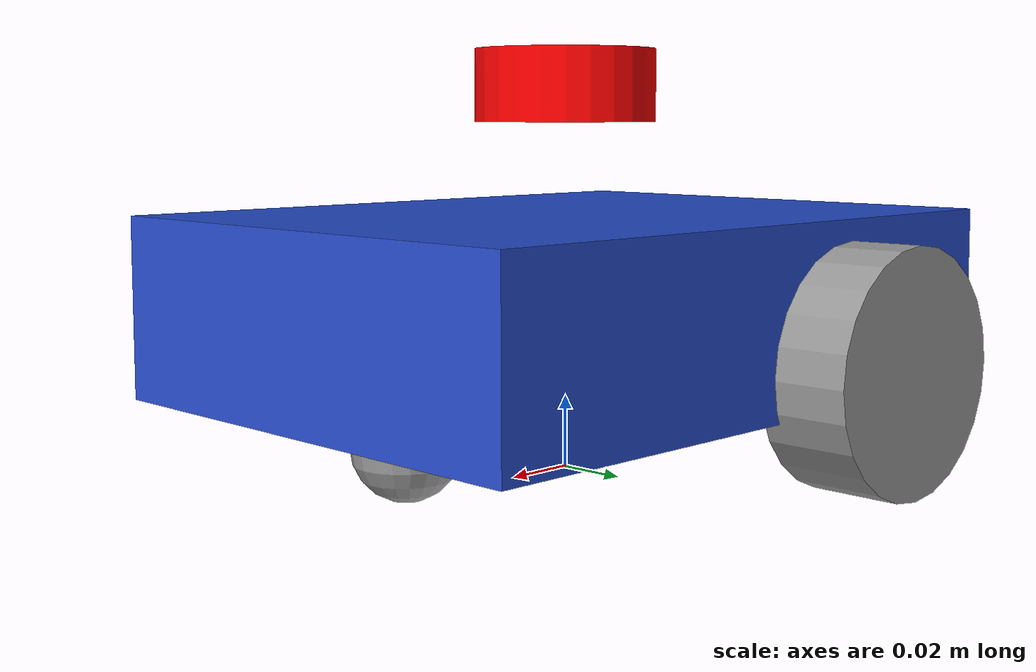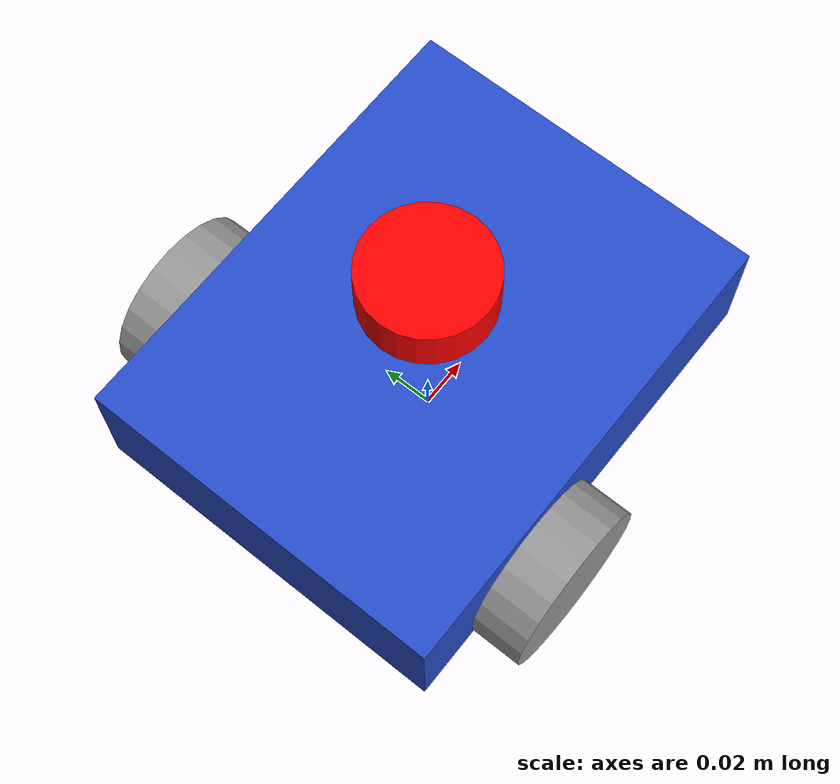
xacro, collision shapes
<?xml version="1.0"?>
<robot xmlns:xacro="http://www.ros.org/wiki/xacro">

  <!-- Parámetros generales -->
  <xacro:arg name="package_name" default="my_robot_description"/>
  <xacro:arg name="mesh_dir" default="meshes"/>

  <!-- Escala global del modelo CAD exportado desde SolidWorks -->
  <xacro:property name="global_scale" value="1.0"/>

  <!-- Base -->
  <xacro:property name="base_mesh" value="base_link.STL"/>
  <xacro:property name="base_scale" value="${global_scale} ${global_scale} ${global_scale}"/>
  <xacro:property name="base_visual_xyz" value="0 0 0"/>
  <xacro:property name="base_visual_rpy" value="0 0 0"/>

  <!-- Rueda izquierda -->
  <xacro:property name="left_wheel_mesh" value="Rueda_izquierda_link.STL"/>
  <xacro:property name="left_wheel_scale" value="${global_scale} ${global_scale} ${global_scale}"/>
  <xacro:property name="left_wheel_xyz" value="-0.033259 0.08025 -0.01375"/>
  <xacro:property name="left_wheel_rpy" value="0 0 0"/>
  <xacro:property name="left_wheel_axis" value="0 1 0"/>
  <xacro:property name="left_wheel_visual_xyz" value="0 0 0"/>
  <xacro:property name="left_wheel_visual_rpy" value="-1.5708 0.042481 0"/>

  <!-- Rueda derecha -->
  <xacro:property name="right_wheel_mesh" value="Rueda_derecha_link.STL"/>
  <xacro:property name="right_wheel_scale" value="${global_scale} ${global_scale} ${global_scale}"/>
  <xacro:property name="right_wheel_xyz" value="-0.033259 -0.08025 -0.01375"/>
  <xacro:property name="right_wheel_rpy" value="0 0 0"/>
  <xacro:property name="right_wheel_axis" value="0 1 0"/>
  <xacro:property name="right_wheel_visual_xyz" value="0 0 0"/>
  <xacro:property name="right_wheel_visual_rpy" value="-1.5708 0.042481 0"/>

  <!-- Soporte castor-->
  <xacro:property name="castor_base_mesh" value="Base_castor_link.STL"/>
  <xacro:property name="castor_base_scale" value="${global_scale} ${global_scale} ${global_scale}"/>
  <xacro:property name="castor_base_xyz" value="0.072581 0 -0.009"/>
  <xacro:property name="castor_base_rpy" value="0 0 0"/>
  <xacro:property name="castor_base_axis" value="0 0 1"/>
  <xacro:property name="castor_base_visual_rpy"  value="3.14159 0 3.14159"/>

  <!-- Rueda castor -->
  <xacro:property name="castor_wheel_mesh" value="Rueda_castor_link.STL"/>
  <xacro:property name="castor_wheel_scale" value="${global_scale} ${global_scale} ${global_scale}"/>
  <xacro:property name="castor_wheel_xyz" value="-0.015014 -0.00012272 -0.02296"/>
  <xacro:property name="castor_wheel_rpy" value="0 0 0"/>
  <xacro:property name="castor_wheel_axis" value="0 1 0"/>
  <xacro:property name="castor_wheel_visual_rpy" value="1.5708 0 0"/>

  <!-- Parámetros geométricos de referencia para usar en control/TF -->
  <!-- No se usan explicitamente, pero sirven para dejar documentadas las dimensiones principales -->
  <xacro:property name="wheel_separation" value="0.1605"/>
  <xacro:property name="wheel_radius" value="0.033"/>
  <xacro:property name="robot_length" value="0.185"/>
  <xacro:property name="robot_width" value="0.145"/>
  <xacro:property name="robot_height" value="0.050"/>

  <!-- Macro generica para cualquier link con malla STL.              -->
  <!-- Todos los valores que cambian entre links son parametros:      -->
  <!-- name, mesh, scale, visual_xyz, visual_rpy, material.          -->
  <xacro:macro name="mesh_link" params="name mesh scale visual_xyz visual_rpy material">
    <link name="${name}">
      <visual>
        <origin xyz="${visual_xyz}" rpy="${visual_rpy}"/>
        <geometry>
          <mesh filename="package://$(arg package_name)/$(arg mesh_dir)/${mesh}" scale="${scale}"/>
        </geometry>
        <material name="${material}"/>
      </visual>
    </link>
  </xacro:macro>

  <!-- Instancia de Macros-links -->
  <!-- Sin geometria, punto de contacto del robot con el suelo -->
  <link name="base_footprint"/>

   <link name="base_link">
    <visual>
      <origin xyz="${base_visual_xyz}" rpy="${base_visual_rpy}"/>
      <geometry>
        <mesh filename="package://my_robot_description/meshes/${base_mesh}" scale="${base_scale}"/>
      </geometry>
      <material name="blue"/>
    </visual>
    <collision>
      <origin xyz="0 0 0" rpy="0 0 0"/>
      <geometry>
        <box size="${robot_length} ${robot_width} ${robot_height}"/>
      </geometry>
    </collision>
    <xacro:box_inertia m="0.12" x="${robot_length}" y="${robot_width}" z="${robot_height}"
                       o_xyz="0 0 0" o_rpy="0 0 0"/>
  </link>

  <link name="Rueda_izquierda_link">
    <visual>
      <origin xyz="${left_wheel_visual_xyz}" rpy="${left_wheel_visual_rpy}"/>
      <geometry>
        <mesh filename="package://my_robot_description/meshes/${left_wheel_mesh}" scale="${left_wheel_scale}"/>
      </geometry>
      <material name="grey"/>
    </visual>
    <collision>
      <origin xyz="0 0 0" rpy="1.5708 0 0"/>
      <geometry>
        <cylinder radius="${wheel_radius}" length="0.025"/>
      </geometry>
    </collision>
    <xacro:cylinder_inertia m="0.1403" r="${wheel_radius}" h="0.025"
                            o_xyz="0 0 0" o_rpy="1.5708 0 0"/>
  </link>

  <link name="Rueda_derecha_link">
    <visual>
      <origin xyz="${right_wheel_visual_xyz}" rpy="${right_wheel_visual_rpy}"/>
      <geometry>
        <mesh filename="package://my_robot_description/meshes/${right_wheel_mesh}" scale="${right_wheel_scale}"/>
      </geometry>
      <material name="grey"/>
    </visual>
    <collision>
      <origin xyz="0 0 0" rpy="1.5708 0 0"/>
      <geometry>
        <cylinder radius="${wheel_radius}" length="0.025"/>
      </geometry>
    </collision>
    <xacro:cylinder_inertia m="0.1403" r="${wheel_radius}" h="0.025"
                            o_xyz="0 0 0" o_rpy="1.5708 0 0"/>
  </link>

  <link name="Base_castor_link">
    <visual>
      <origin xyz="0 0 0" rpy="${castor_base_visual_rpy}"/>
      <geometry>
        <mesh filename="package://my_robot_description/meshes/${castor_base_mesh}" scale="${castor_base_scale}"/>
      </geometry>
      <material name="blue"/>
    </visual>
    <collision>
      <origin xyz="0 0 0" rpy="0 0 0"/>
      <geometry>
        <sphere radius="0.01"/>
      </geometry>
    </collision>
    <inertial>
      <mass value="0.01"/>
      <origin xyz="0 0 0" rpy="0 0 0"/>
      <inertia ixx="1e-6" ixy="0" ixz="0" iyy="1e-6" iyz="0" izz="1e-6"/>
    </inertial>
  </link>

  <link name="Rueda_castor_link">
    <visual>
      <origin xyz="0 0 0" rpy="${castor_wheel_visual_rpy}"/>
      <geometry>
        <mesh filename="package://my_robot_description/meshes/${castor_wheel_mesh}" scale="${castor_wheel_scale}"/>
      </geometry>
      <material name="grey"/>
    </visual>
    <collision>
      <origin xyz="0 0 0" rpy="0 0 0"/>
      <geometry>
        <sphere radius="0.0145"/>
      </geometry>
    </collision>
    <inertial>
      <mass value="0.005"/>
      <origin xyz="0 0 0" rpy="0 0 0"/>
      <inertia ixx="1e-6" ixy="0" ixz="0" iyy="1e-6" iyz="0" izz="1e-6"/>
    </inertial>
  </link>

  <!-- Link del LIDAR, cilindro pequeño sobre el chasis -->
  <link name="Lidar_link">
    <visual>
      <origin xyz="0 0 0.01" rpy="0 0 0"/>
      <geometry>
        <cylinder radius="0.025" length="0.02"/>
      </geometry>
      <material name="">
        <color rgba="1 0 0 1"/>
      </material>
    </visual>
    <collision>
      <origin xyz="0 0 0.01" rpy="0 0 0"/>
      <geometry>
        <cylinder radius="0.025" length="0.02"/>
      </geometry>
    </collision>
    <inertial>
      <mass value="0.01"/>
      <origin xyz="0 0 0.01" rpy="0 0 0"/>
      <inertia ixx="1e-6" ixy="0" ixz="0" iyy="1e-6" iyz="0" izz="1e-6"/>
    </inertial>
  </link>

  <!-- Joint que fija el LIDAR al chasis -->
  <joint name="Lidar_joint" type="fixed">
    <parent link="base_link"/>
    <child link="Lidar_link"/>
    <origin xyz="0 0 0.05" rpy="0 0 0"/>
    <axis xyz="0 1 0"/>
  </joint>

  <!-- Link de la IMU, sensor puntual, sin geometria visible -->
  <link name="imu_link">
    <inertial>
      <mass value="0.001"/>
      <origin xyz="0 0 0" rpy="0 0 0"/>
      <inertia ixx="1e-7" ixy="0" ixz="0" iyy="1e-7" iyz="0" izz="1e-7"/>
    </inertial>
  </link>
  <!-- Joint que fija la IMU al chasis, en el centro de rotacion -->
  <joint name="imu_joint" type="fixed">
    <parent link="base_link"/>
    <child link="imu_link"/>
    <origin xyz="0 0 0.02" rpy="0 0 0"/>
  </joint>

 <!-- Instancia Link rueda derecha-->
  <joint name="Rueda_derecha_joint" type="continuous">
    <origin xyz="${right_wheel_xyz}" rpy="${right_wheel_rpy}"/>
    <parent link="base_link"/>
    <child link="Rueda_derecha_link"/>
    <axis xyz="${right_wheel_axis}"/>
  </joint>
 <!-- Instancia Link caja castor-->
  <joint name="Base_castor_joint" type="continuous">
    <origin xyz="${castor_base_xyz}" rpy="${castor_base_rpy}"/>
    <parent link="base_link"/>
    <child link="Base_castor_link"/>
    <axis xyz="${castor_base_axis}"/>
  </joint>
 <!-- Instancia Link rueda castor-->
  <joint name="Rueda_castor_joint" type="continuous">
    <origin xyz="${castor_wheel_xyz}" rpy="${castor_wheel_rpy}"/>
    <parent link="Base_castor_link"/>
    <child link="Rueda_castor_link"/>
    <axis xyz="${castor_wheel_axis}"/>
  </joint>

  <!-- Joints -->
  <joint name="base_joint" type="fixed">
  <parent link="base_footprint"/>
  <child link="base_link"/>
  <origin xyz="0 0 0.04675" rpy="0 0 0"/>
  </joint>

  <joint name="Rueda_izquierda_joint" type="continuous">
    <origin xyz="${left_wheel_xyz}" rpy="${left_wheel_rpy}"/>
    <parent link="base_link"/>
    <child link="Rueda_izquierda_link"/>
    <axis xyz="${left_wheel_axis}"/>
  </joint>

</robot>
